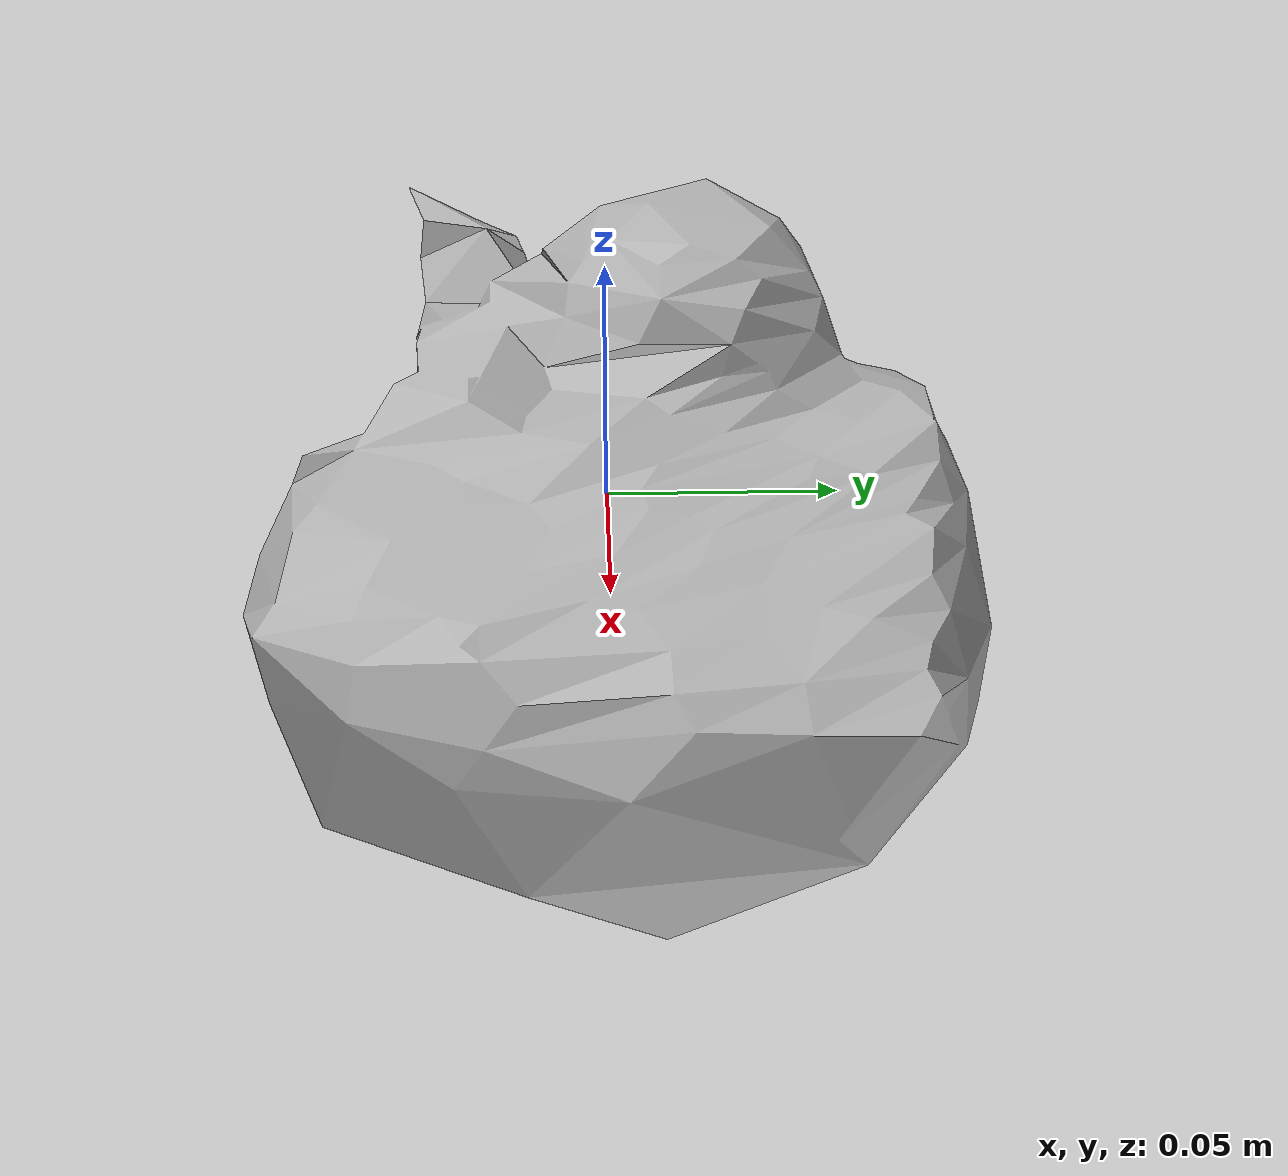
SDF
<?xml version="1.0" ?>
<sdf version="1.4">
  <model name="kong_air_dog_squeakair_tennis_ball">
    <link name="kong_air_dog_squeakair_tennis_ball_link">
      <inertial>
        <pose>0 0 0 0 0 0</pose>
        <mass>0.08</mass>
      </inertial>

      <visual name="kong_air_dog_squeakair_tennis_ball_visual">
        <pose>0 0 0 0 0 0</pose>
        <material>
          <script>
            <uri>model://kong_air_dog_squeakair_tennis_ball/materials/scripts</uri>
            <uri>model://kong_air_dog_squeakair_tennis_ball/materials/textures</uri>
            <name>kong_air_dog_squeakair_tennis_ball</name>
          </script>
        </material>
        <geometry>
          <mesh>
            <uri>model://kong_air_dog_squeakair_tennis_ball/meshes/kong_air_dog_squeakair_tennis_ball.dae</uri>
          </mesh>
        </geometry>
      </visual>

      <collision name="kong_air_dog_squeakair_tennis_ball_collision">
        <pose>0 0 0 0 0 0</pose>
        <geometry>
          <mesh>
            <uri>model://kong_air_dog_squeakair_tennis_ball/meshes/kong_air_dog_squeakair_tennis_ball.dae</uri>
          </mesh>
        </geometry>
        <surface>
          <friction>
            <ode>
              <mu>0.8</mu>
              <mu2>0.8</mu2>
            </ode>
          </friction>
        </surface>
      </collision>

    </link>
  </model>
</sdf>
